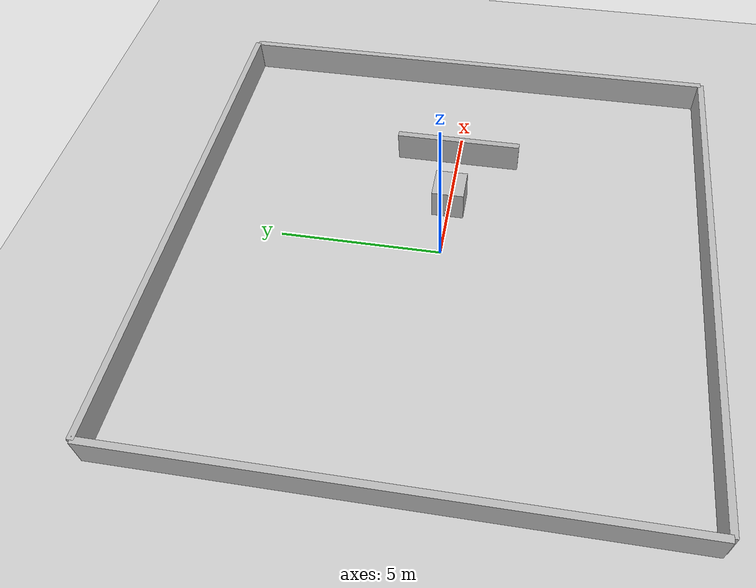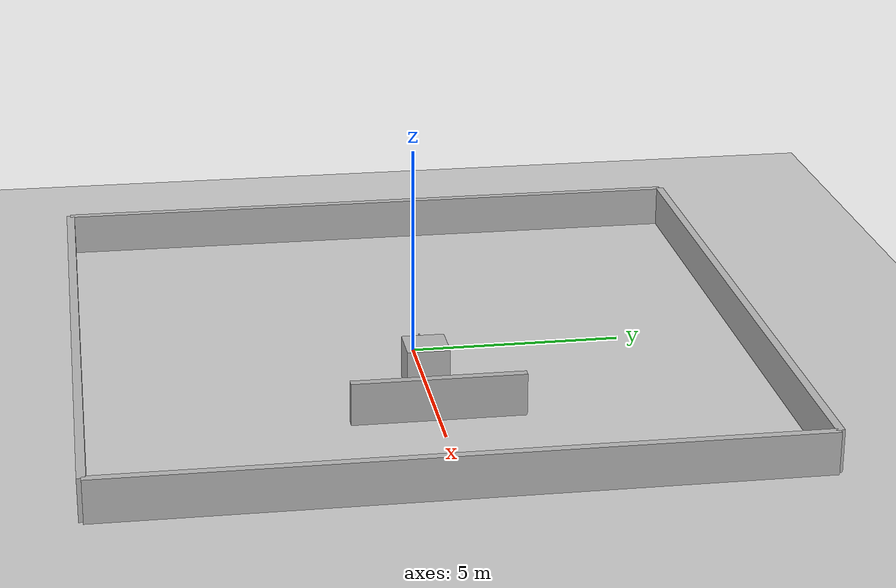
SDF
<?xml version="1.0"?>
<sdf version="1.10">
    <world name="empty_world">
        <!-- ==========================================================
                PHYSICS
        =========================================================== -->
        <physics name="1ms" type="ignored">
            <max_step_size>0.001</max_step_size>
            <real_time_factor>1.0</real_time_factor>
            <real_time_update_rate>1000</real_time_update_rate>
        </physics>
        <!-- ==========================================================
                REQUIRED SYSTEM PLUGINS
        =========================================================== -->
        <plugin
            filename="gz-sim-physics-system"
            name="gz::sim::systems::Physics">
        </plugin>
        <plugin
            filename="gz-sim-user-commands-system"
            name="gz::sim::systems::UserCommands">
        </plugin>
        <plugin
            filename="gz-sim-scene-broadcaster-system"
            name="gz::sim::systems::SceneBroadcaster">
        </plugin>
        <plugin
            filename="gz-sim-contact-system"
            name="gz::sim::systems::Contact">
        </plugin>
        <!-- ==========================================================
                LIGHTING
        =========================================================== -->
        <light type="directional" name="sun">
            <cast_shadows>true</cast_shadows>
            <pose>0 0 10 0 0 0</pose>
            <diffuse>0.8 0.8 0.8 1</diffuse>
            <specular>0.2 0.2 0.2 1</specular>
            <attenuation>
                <range>1000</range>
                <constant>0.9</constant>
                <linear>0.01</linear>
                <quadratic>0.001</quadratic>
            </attenuation>
            <direction>-0.5 0.1 -0.9</direction>
        </light>
        <!-- ==========================================================
                GROUND PLANE
        =========================================================== -->
        <model name="ground_plane">
            <static>true</static>
            <link name="link">
                <collision name="collision">
                    <geometry>
                        <plane>
                            <normal>0 0 1</normal>
                            <size>100 100</size>
                        </plane>
                    </geometry>
                    <surface>
                        <friction>
                            <ode>
                                <mu>1.0</mu>
                                <mu2>1.0</mu2>
                            </ode>
                        </friction>
                    </surface>
                </collision>
                <visual name="visual">
                    <geometry>
                        <plane>
                            <normal>0 0 1</normal>
                            <size>100 100</size>
                        </plane>
                    </geometry>
                    <material>
                        <ambient>0.8 0.8 0.8 1</ambient>
                        <diffuse>0.8 0.8 0.8 1</diffuse>
                        <specular>0.8 0.8 0.8 1</specular>
                    </material>
                </visual>
            </link>
        </model>
        <!-- ==========================================================
                WALLS
        =========================================================== -->
        <model name="wall_left">

            <static>true</static>

            <pose>0 8 0.5 0 0 0</pose>

            <link name="link">

                <visual name="visual">
                    <geometry>
                        <box>
                            <size>16 0.2 1</size>
                        </box>
                    </geometry>
                </visual>

                <collision name="collision">
                    <geometry>
                        <box>
                            <size>16 0.2 1</size>
                        </box>
                    </geometry>
                </collision>

            </link>

        </model>
        <model name="wall_right">

            <static>true</static>

            <pose>0 -8 0.5 0 0 0</pose>

            <link name="link">

                <visual name="visual">
                    <geometry>
                        <box>
                            <size>16 0.2 1</size>
                        </box>
                    </geometry>
                </visual>

                <collision name="collision">
                    <geometry>
                        <box>
                            <size>16 0.2 1</size>
                        </box>
                    </geometry>
                </collision>

            </link>

        </model>
        <model name="wall_front">

            <static>true</static>

            <pose>8 0 0.5 0 0 1.57</pose>

            <link name="link">

                <visual name="visual">
                    <geometry>
                        <box>
                            <size>16 0.2 1</size>
                        </box>
                    </geometry>
                </visual>

                <collision name="collision">
                    <geometry>
                        <box>
                            <size>16 0.2 1</size>
                        </box>
                    </geometry>
                </collision>

            </link>

        </model>
        <model name="wall_back">

            <static>true</static>

            <pose>-8 0 0.5 0 0 1.57</pose>

            <link name="link">

                <visual name="visual">
                    <geometry>
                        <box>
                            <size>16 0.2 1</size>
                        </box>
                    </geometry>
                </visual>

                <collision name="collision">
                    <geometry>
                        <box>
                            <size>16 0.2 1</size>
                        </box>
                    </geometry>
                </collision>

            </link>

        </model>
        <model name="wall_inside">
            <static>true</static>
            <pose>4 0 0.5 0 0 0</pose>
            <link name="link">
                <visual name="visual">
                    <geometry>
                        <box>
                            <size>0.2 4 1</size>
                        </box>
                    </geometry>
                    <material>
                        <ambient>0.7 0.7 0.7 1</ambient>
                        <diffuse>0.7 0.7 0.7 1</diffuse>
                    </material>
                </visual>
                <collision name="collision">
                    <geometry>
                        <box>
                            <size>0.2 4 1</size>
                        </box>
                    </geometry>
                </collision>
            </link>
        </model>
        <!-- ===========================================================
                OBSTACLES
        =========================================================== -->
        <model name="box_obstacle">

            <static>true</static>

            <pose>2 0 0.5 0 0 0</pose>

            <link name="link">

                <visual name="visual">
                    <geometry>
                        <box>
                            <size>1 1 1</size>
                        </box>
                    </geometry>
                </visual>

                <collision name="collision">
                    <geometry>
                        <box>
                            <size>1 1 1</size>
                        </box>
                    </geometry>
                </collision>

            </link>

        </model>

        <model name="marker_aruco">

            <static>true</static>

            <pose>1 0 0.7 0 0 0</pose>

            <link name="marker_link">

                <!-- Thin collision box -->
                <collision name="collision">
                  <geometry>
                    <box>
                      <size>0.20 0.02 0.20</size>
                    </box>
                  </geometry>
                </collision>
                <!-- Visual with ArUco texture -->
                <visual name="visual">
                  <geometry>
                    <box>
                      <size>0.20 0.02 0.20</size>
                    </box>
                  </geometry>

                  <material>
                    <ambient>1 1 1 1</ambient>
                    <diffuse>1 1 1 1</diffuse>
                    <specular>0.1 0.1 0.1 1</specular>

                    <pbr>
                      <metal>
                        <albedo_map>aruco-markers.png</albedo_map>
                        <roughness>1.0</roughness>
                        <metalness>0.0</metalness>
                      </metal>
                    </pbr>
                  </material>
                </visual>

              </link>
        </model>

    </world>
</sdf>
